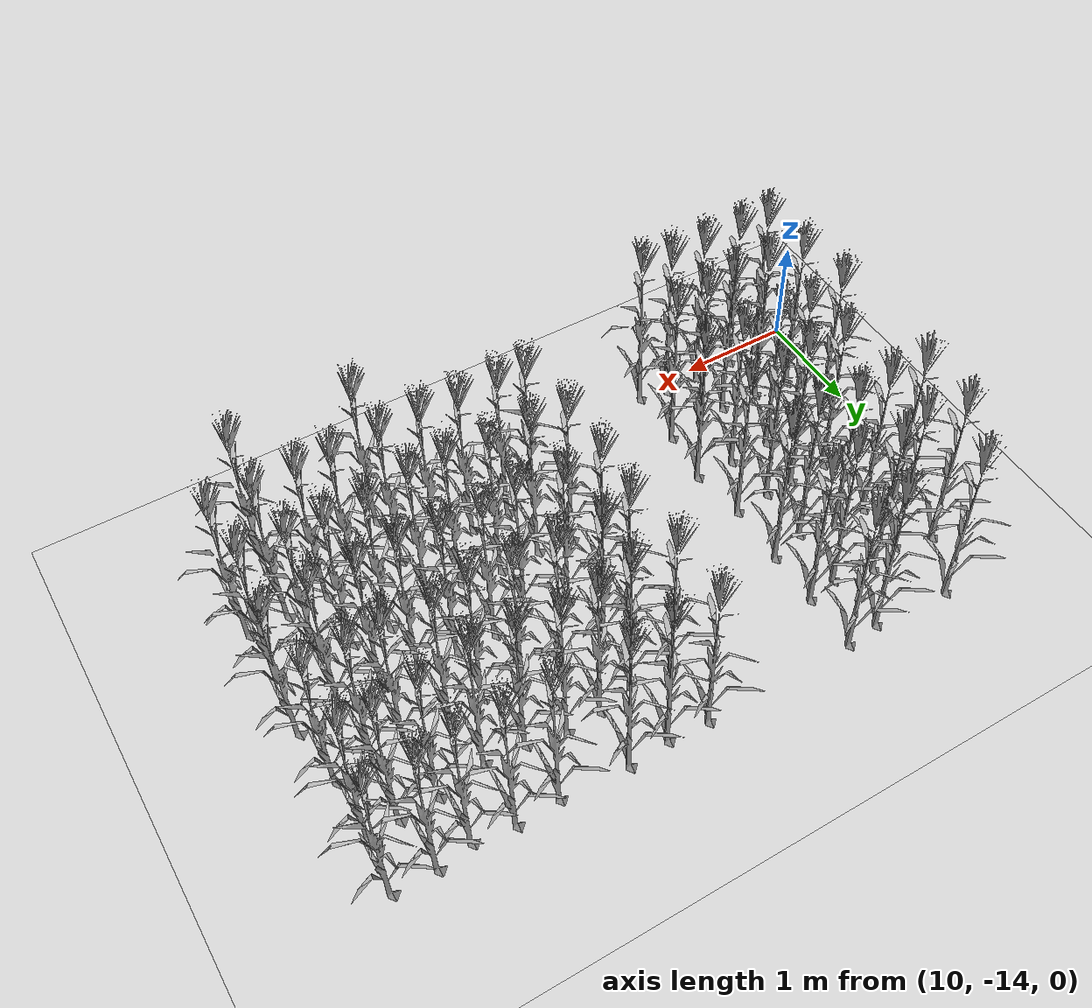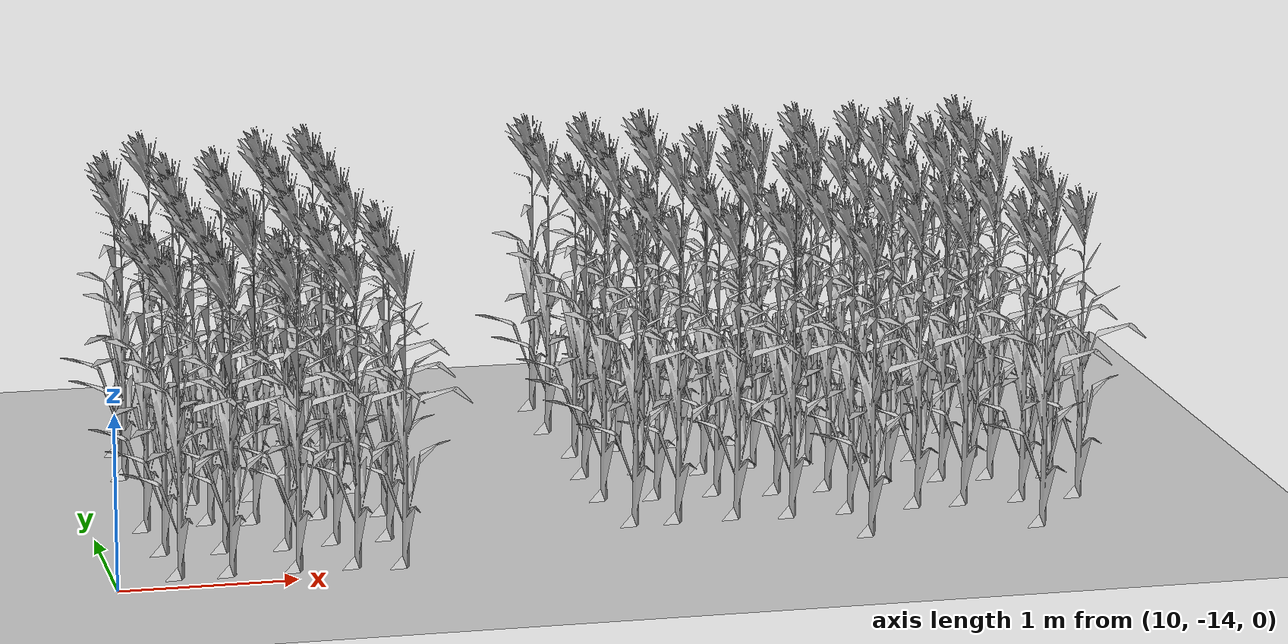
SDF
<sdf version="1.7">
 <world name="farmland_world">
  <model name="ground_plane">
   <static>1</static>
   <link name="link">
    <collision name="collision">
     <geometry><plane><normal>0 0 1</normal><size>40.0 40.0</size></plane></geometry>
     <surface><friction><ode><mu>100</mu><mu2>50</mu2></ode></friction></surface>
    </collision>
    <visual name="visual">
     <cast_shadows>0</cast_shadows>
     <geometry><plane><normal>0 0 1</normal><size>40.0 40.0</size></plane></geometry>
     <material>
      <script><uri>file://media/materials/scripts/gazebo.material</uri><name>Gazebo/Grey</name></script>
     </material>
    </visual>
   </link>
  </model>
  <model name="tree_3_408">
   <static>1</static>
   <link name="link">
    <collision name="collision">
     <geometry><mesh><uri>model://Corn_low_poly/corn.obj</uri><scale>1 1 1</scale></mesh></geometry>
     <surface><friction><ode><mu>100</mu><mu2>50</mu2></ode></friction></surface>
    </collision>
    <visual name="visual">
     <geometry><mesh><uri>model://Corn_low_poly/corn.obj</uri><scale>1 1 1</scale></mesh></geometry>
    </visual>
   </link>
   <pose>10.378177169690694 -11.273850662119786 0 0 0 0</pose>
  </model>
  <model name="tree_3_409">
   <static>1</static>
   <link name="link">
    <collision name="collision">
     <geometry><mesh><uri>model://Corn_low_poly/corn.obj</uri><scale>1 1 1</scale></mesh></geometry>
     <surface><friction><ode><mu>100</mu><mu2>50</mu2></ode></friction></surface>
    </collision>
    <visual name="visual">
     <geometry><mesh><uri>model://Corn_low_poly/corn.obj</uri><scale>1 1 1</scale></mesh></geometry>
    </visual>
   </link>
   <pose>10.347790786948346 -11.795807393422603 0 0 0 0</pose>
  </model>
  <model name="tree_3_411">
   <static>1</static>
   <link name="link">
    <collision name="collision">
     <geometry><mesh><uri>model://Corn_low_poly/corn.obj</uri><scale>1 1 1</scale></mesh></geometry>
     <surface><friction><ode><mu>100</mu><mu2>50</mu2></ode></friction></surface>
    </collision>
    <visual name="visual">
     <geometry><mesh><uri>model://Corn_low_poly/corn.obj</uri><scale>1 1 1</scale></mesh></geometry>
    </visual>
   </link>
   <pose>10.323994971421616 -12.887893453956563 0 0 0 0</pose>
  </model>
  <model name="tree_3_412">
   <static>1</static>
   <link name="link">
    <collision name="collision">
     <geometry><mesh><uri>model://Corn_low_poly/corn.obj</uri><scale>1 1 1</scale></mesh></geometry>
     <surface><friction><ode><mu>100</mu><mu2>50</mu2></ode></friction></surface>
    </collision>
    <visual name="visual">
     <geometry><mesh><uri>model://Corn_low_poly/corn.obj</uri><scale>1 1 1</scale></mesh></geometry>
    </visual>
   </link>
   <pose>10.359565088816868 -13.371506183479626 0 0 0 0</pose>
  </model>
  <model name="tree_3_413">
   <static>1</static>
   <link name="link">
    <collision name="collision">
     <geometry><mesh><uri>model://Corn_low_poly/corn.obj</uri><scale>1 1 1</scale></mesh></geometry>
     <surface><friction><ode><mu>100</mu><mu2>50</mu2></ode></friction></surface>
    </collision>
    <visual name="visual">
     <geometry><mesh><uri>model://Corn_low_poly/corn.obj</uri><scale>1 1 1</scale></mesh></geometry>
    </visual>
   </link>
   <pose>10.375353865705966 -13.854675953818488 0 0 0 0</pose>
  </model>
  <model name="tree_3_437">
   <static>1</static>
   <link name="link">
    <collision name="collision">
     <geometry><mesh><uri>model://Corn_low_poly/corn.obj</uri><scale>1 1 1</scale></mesh></geometry>
     <surface><friction><ode><mu>100</mu><mu2>50</mu2></ode></friction></surface>
    </collision>
    <visual name="visual">
     <geometry><mesh><uri>model://Corn_low_poly/corn.obj</uri><scale>1 1 1</scale></mesh></geometry>
    </visual>
   </link>
   <pose>10.653282648832125 -10.775167589396514 0 0 0 0</pose>
  </model>
  <model name="tree_3_438">
   <static>1</static>
   <link name="link">
    <collision name="collision">
     <geometry><mesh><uri>model://Corn_low_poly/corn.obj</uri><scale>1 1 1</scale></mesh></geometry>
     <surface><friction><ode><mu>100</mu><mu2>50</mu2></ode></friction></surface>
    </collision>
    <visual name="visual">
     <geometry><mesh><uri>model://Corn_low_poly/corn.obj</uri><scale>1 1 1</scale></mesh></geometry>
    </visual>
   </link>
   <pose>10.711728258271878 -11.357084645555314 0 0 0 0</pose>
  </model>
  <model name="tree_3_439">
   <static>1</static>
   <link name="link">
    <collision name="collision">
     <geometry><mesh><uri>model://Corn_low_poly/corn.obj</uri><scale>1 1 1</scale></mesh></geometry>
     <surface><friction><ode><mu>100</mu><mu2>50</mu2></ode></friction></surface>
    </collision>
    <visual name="visual">
     <geometry><mesh><uri>model://Corn_low_poly/corn.obj</uri><scale>1 1 1</scale></mesh></geometry>
    </visual>
   </link>
   <pose>10.685036562910984 -11.812894682988933 0 0 0 0</pose>
  </model>
  <model name="tree_3_440">
   <static>1</static>
   <link name="link">
    <collision name="collision">
     <geometry><mesh><uri>model://Corn_low_poly/corn.obj</uri><scale>1 1 1</scale></mesh></geometry>
     <surface><friction><ode><mu>100</mu><mu2>50</mu2></ode></friction></surface>
    </collision>
    <visual name="visual">
     <geometry><mesh><uri>model://Corn_low_poly/corn.obj</uri><scale>1 1 1</scale></mesh></geometry>
    </visual>
   </link>
   <pose>10.674864976824791 -12.394576507813946 0 0 0 0</pose>
  </model>
  <model name="tree_3_441">
   <static>1</static>
   <link name="link">
    <collision name="collision">
     <geometry><mesh><uri>model://Corn_low_poly/corn.obj</uri><scale>1 1 1</scale></mesh></geometry>
     <surface><friction><ode><mu>100</mu><mu2>50</mu2></ode></friction></surface>
    </collision>
    <visual name="visual">
     <geometry><mesh><uri>model://Corn_low_poly/corn.obj</uri><scale>1 1 1</scale></mesh></geometry>
    </visual>
   </link>
   <pose>10.699367530608168 -12.819968274076253 0 0 0 0</pose>
  </model>
  <model name="tree_3_442">
   <static>1</static>
   <link name="link">
    <collision name="collision">
     <geometry><mesh><uri>model://Corn_low_poly/corn.obj</uri><scale>1 1 1</scale></mesh></geometry>
     <surface><friction><ode><mu>100</mu><mu2>50</mu2></ode></friction></surface>
    </collision>
    <visual name="visual">
     <geometry><mesh><uri>model://Corn_low_poly/corn.obj</uri><scale>1 1 1</scale></mesh></geometry>
    </visual>
   </link>
   <pose>10.694600946095816 -13.395878823783436 0 0 0 0</pose>
  </model>
  <model name="tree_3_443">
   <static>1</static>
   <link name="link">
    <collision name="collision">
     <geometry><mesh><uri>model://Corn_low_poly/corn.obj</uri><scale>1 1 1</scale></mesh></geometry>
     <surface><friction><ode><mu>100</mu><mu2>50</mu2></ode></friction></surface>
    </collision>
    <visual name="visual">
     <geometry><mesh><uri>model://Corn_low_poly/corn.obj</uri><scale>1 1 1</scale></mesh></geometry>
    </visual>
   </link>
   <pose>10.663517884539603 -13.857888201504915 0 0 0 0</pose>
  </model>
  <model name="tree_3_468">
   <static>1</static>
   <link name="link">
    <collision name="collision">
     <geometry><mesh><uri>model://Corn_low_poly/corn.obj</uri><scale>1 1 1</scale></mesh></geometry>
     <surface><friction><ode><mu>100</mu><mu2>50</mu2></ode></friction></surface>
    </collision>
    <visual name="visual">
     <geometry><mesh><uri>model://Corn_low_poly/corn.obj</uri><scale>1 1 1</scale></mesh></geometry>
    </visual>
   </link>
   <pose>11.014290454668355 -11.26365876882611 0 0 0 0</pose>
  </model>
  <model name="tree_3_469">
   <static>1</static>
   <link name="link">
    <collision name="collision">
     <geometry><mesh><uri>model://Corn_low_poly/corn.obj</uri><scale>1 1 1</scale></mesh></geometry>
     <surface><friction><ode><mu>100</mu><mu2>50</mu2></ode></friction></surface>
    </collision>
    <visual name="visual">
     <geometry><mesh><uri>model://Corn_low_poly/corn.obj</uri><scale>1 1 1</scale></mesh></geometry>
    </visual>
   </link>
   <pose>11.000642005382334 -11.799407988899151 0 0 0 0</pose>
  </model>
  <model name="tree_3_470">
   <static>1</static>
   <link name="link">
    <collision name="collision">
     <geometry><mesh><uri>model://Corn_low_poly/corn.obj</uri><scale>1 1 1</scale></mesh></geometry>
     <surface><friction><ode><mu>100</mu><mu2>50</mu2></ode></friction></surface>
    </collision>
    <visual name="visual">
     <geometry><mesh><uri>model://Corn_low_poly/corn.obj</uri><scale>1 1 1</scale></mesh></geometry>
    </visual>
   </link>
   <pose>11.028461330285811 -12.38615394152807 0 0 0 0</pose>
  </model>
  <model name="tree_3_471">
   <static>1</static>
   <link name="link">
    <collision name="collision">
     <geometry><mesh><uri>model://Corn_low_poly/corn.obj</uri><scale>1 1 1</scale></mesh></geometry>
     <surface><friction><ode><mu>100</mu><mu2>50</mu2></ode></friction></surface>
    </collision>
    <visual name="visual">
     <geometry><mesh><uri>model://Corn_low_poly/corn.obj</uri><scale>1 1 1</scale></mesh></geometry>
    </visual>
   </link>
   <pose>10.950488729782585 -12.862584494579488 0 0 0 0</pose>
  </model>
  <model name="tree_3_472">
   <static>1</static>
   <link name="link">
    <collision name="collision">
     <geometry><mesh><uri>model://Corn_low_poly/corn.obj</uri><scale>1 1 1</scale></mesh></geometry>
     <surface><friction><ode><mu>100</mu><mu2>50</mu2></ode></friction></surface>
    </collision>
    <visual name="visual">
     <geometry><mesh><uri>model://Corn_low_poly/corn.obj</uri><scale>1 1 1</scale></mesh></geometry>
    </visual>
   </link>
   <pose>11.045874227209751 -13.409879493074248 0 0 0 0</pose>
  </model>
  <model name="tree_3_473">
   <static>1</static>
   <link name="link">
    <collision name="collision">
     <geometry><mesh><uri>model://Corn_low_poly/corn.obj</uri><scale>1 1 1</scale></mesh></geometry>
     <surface><friction><ode><mu>100</mu><mu2>50</mu2></ode></friction></surface>
    </collision>
    <visual name="visual">
     <geometry><mesh><uri>model://Corn_low_poly/corn.obj</uri><scale>1 1 1</scale></mesh></geometry>
    </visual>
   </link>
   <pose>11.034597566893511 -13.852874629542011 0 0 0 0</pose>
  </model>
  <model name="tree_3_497">
   <static>1</static>
   <link name="link">
    <collision name="collision">
     <geometry><mesh><uri>model://Corn_low_poly/corn.obj</uri><scale>1 1 1</scale></mesh></geometry>
     <surface><friction><ode><mu>100</mu><mu2>50</mu2></ode></friction></surface>
    </collision>
    <visual name="visual">
     <geometry><mesh><uri>model://Corn_low_poly/corn.obj</uri><scale>1 1 1</scale></mesh></geometry>
    </visual>
   </link>
   <pose>11.338777313071688 -10.818100840378857 0 0 0 0</pose>
  </model>
  <model name="tree_3_498">
   <static>1</static>
   <link name="link">
    <collision name="collision">
     <geometry><mesh><uri>model://Corn_low_poly/corn.obj</uri><scale>1 1 1</scale></mesh></geometry>
     <surface><friction><ode><mu>100</mu><mu2>50</mu2></ode></friction></surface>
    </collision>
    <visual name="visual">
     <geometry><mesh><uri>model://Corn_low_poly/corn.obj</uri><scale>1 1 1</scale></mesh></geometry>
    </visual>
   </link>
   <pose>11.363573362736169 -11.348054740106246 0 0 0 0</pose>
  </model>
  <model name="tree_3_499">
   <static>1</static>
   <link name="link">
    <collision name="collision">
     <geometry><mesh><uri>model://Corn_low_poly/corn.obj</uri><scale>1 1 1</scale></mesh></geometry>
     <surface><friction><ode><mu>100</mu><mu2>50</mu2></ode></friction></surface>
    </collision>
    <visual name="visual">
     <geometry><mesh><uri>model://Corn_low_poly/corn.obj</uri><scale>1 1 1</scale></mesh></geometry>
    </visual>
   </link>
   <pose>11.3143047172839 -11.875512262066307 0 0 0 0</pose>
  </model>
  <model name="tree_3_500">
   <static>1</static>
   <link name="link">
    <collision name="collision">
     <geometry><mesh><uri>model://Corn_low_poly/corn.obj</uri><scale>1 1 1</scale></mesh></geometry>
     <surface><friction><ode><mu>100</mu><mu2>50</mu2></ode></friction></surface>
    </collision>
    <visual name="visual">
     <geometry><mesh><uri>model://Corn_low_poly/corn.obj</uri><scale>1 1 1</scale></mesh></geometry>
    </visual>
   </link>
   <pose>11.292878373986259 -12.378265223253912 0 0 0 0</pose>
  </model>
  <model name="tree_3_501">
   <static>1</static>
   <link name="link">
    <collision name="collision">
     <geometry><mesh><uri>model://Corn_low_poly/corn.obj</uri><scale>1 1 1</scale></mesh></geometry>
     <surface><friction><ode><mu>100</mu><mu2>50</mu2></ode></friction></surface>
    </collision>
    <visual name="visual">
     <geometry><mesh><uri>model://Corn_low_poly/corn.obj</uri><scale>1 1 1</scale></mesh></geometry>
    </visual>
   </link>
   <pose>11.341419803534086 -12.838969273435927 0 0 0 0</pose>
  </model>
  <model name="tree_3_502">
   <static>1</static>
   <link name="link">
    <collision name="collision">
     <geometry><mesh><uri>model://Corn_low_poly/corn.obj</uri><scale>1 1 1</scale></mesh></geometry>
     <surface><friction><ode><mu>100</mu><mu2>50</mu2></ode></friction></surface>
    </collision>
    <visual name="visual">
     <geometry><mesh><uri>model://Corn_low_poly/corn.obj</uri><scale>1 1 1</scale></mesh></geometry>
    </visual>
   </link>
   <pose>11.328990123558773 -13.362194836320823 0 0 0 0</pose>
  </model>
  <model name="tree_3_503">
   <static>1</static>
   <link name="link">
    <collision name="collision">
     <geometry><mesh><uri>model://Corn_low_poly/corn.obj</uri><scale>1 1 1</scale></mesh></geometry>
     <surface><friction><ode><mu>100</mu><mu2>50</mu2></ode></friction></surface>
    </collision>
    <visual name="visual">
     <geometry><mesh><uri>model://Corn_low_poly/corn.obj</uri><scale>1 1 1</scale></mesh></geometry>
    </visual>
   </link>
   <pose>11.36506835058263 -13.849051032313593 0 0 0 0</pose>
  </model>
  <model name="tree_3_527">
   <static>1</static>
   <link name="link">
    <collision name="collision">
     <geometry><mesh><uri>model://Corn_low_poly/corn.obj</uri><scale>1 1 1</scale></mesh></geometry>
     <surface><friction><ode><mu>100</mu><mu2>50</mu2></ode></friction></surface>
    </collision>
    <visual name="visual">
     <geometry><mesh><uri>model://Corn_low_poly/corn.obj</uri><scale>1 1 1</scale></mesh></geometry>
    </visual>
   </link>
   <pose>11.641282021196465 -10.778653688376014 0 0 0 0</pose>
  </model>
  <model name="tree_3_528">
   <static>1</static>
   <link name="link">
    <collision name="collision">
     <geometry><mesh><uri>model://Corn_low_poly/corn.obj</uri><scale>1 1 1</scale></mesh></geometry>
     <surface><friction><ode><mu>100</mu><mu2>50</mu2></ode></friction></surface>
    </collision>
    <visual name="visual">
     <geometry><mesh><uri>model://Corn_low_poly/corn.obj</uri><scale>1 1 1</scale></mesh></geometry>
    </visual>
   </link>
   <pose>11.640798478360143 -11.287014707932315 0 0 0 0</pose>
  </model>
  <model name="tree_3_529">
   <static>1</static>
   <link name="link">
    <collision name="collision">
     <geometry><mesh><uri>model://Corn_low_poly/corn.obj</uri><scale>1 1 1</scale></mesh></geometry>
     <surface><friction><ode><mu>100</mu><mu2>50</mu2></ode></friction></surface>
    </collision>
    <visual name="visual">
     <geometry><mesh><uri>model://Corn_low_poly/corn.obj</uri><scale>1 1 1</scale></mesh></geometry>
    </visual>
   </link>
   <pose>11.637558212617984 -11.779796159280378 0 0 0 0</pose>
  </model>
  <model name="tree_3_530">
   <static>1</static>
   <link name="link">
    <collision name="collision">
     <geometry><mesh><uri>model://Corn_low_poly/corn.obj</uri><scale>1 1 1</scale></mesh></geometry>
     <surface><friction><ode><mu>100</mu><mu2>50</mu2></ode></friction></surface>
    </collision>
    <visual name="visual">
     <geometry><mesh><uri>model://Corn_low_poly/corn.obj</uri><scale>1 1 1</scale></mesh></geometry>
    </visual>
   </link>
   <pose>11.621215807272481 -12.34639066558705 0 0 0 0</pose>
  </model>
  <model name="tree_3_531">
   <static>1</static>
   <link name="link">
    <collision name="collision">
     <geometry><mesh><uri>model://Corn_low_poly/corn.obj</uri><scale>1 1 1</scale></mesh></geometry>
     <surface><friction><ode><mu>100</mu><mu2>50</mu2></ode></friction></surface>
    </collision>
    <visual name="visual">
     <geometry><mesh><uri>model://Corn_low_poly/corn.obj</uri><scale>1 1 1</scale></mesh></geometry>
    </visual>
   </link>
   <pose>11.696000917124984 -12.847906597622334 0 0 0 0</pose>
  </model>
  <model name="tree_3_532">
   <static>1</static>
   <link name="link">
    <collision name="collision">
     <geometry><mesh><uri>model://Corn_low_poly/corn.obj</uri><scale>1 1 1</scale></mesh></geometry>
     <surface><friction><ode><mu>100</mu><mu2>50</mu2></ode></friction></surface>
    </collision>
    <visual name="visual">
     <geometry><mesh><uri>model://Corn_low_poly/corn.obj</uri><scale>1 1 1</scale></mesh></geometry>
    </visual>
   </link>
   <pose>11.637694981172297 -13.344417690520215 0 0 0 0</pose>
  </model>
  <model name="tree_3_533">
   <static>1</static>
   <link name="link">
    <collision name="collision">
     <geometry><mesh><uri>model://Corn_low_poly/corn.obj</uri><scale>1 1 1</scale></mesh></geometry>
     <surface><friction><ode><mu>100</mu><mu2>50</mu2></ode></friction></surface>
    </collision>
    <visual name="visual">
     <geometry><mesh><uri>model://Corn_low_poly/corn.obj</uri><scale>1 1 1</scale></mesh></geometry>
    </visual>
   </link>
   <pose>11.624693769320901 -13.896052886572678 0 0 0 0</pose>
  </model>
  <model name="tree_3_557">
   <static>1</static>
   <link name="link">
    <collision name="collision">
     <geometry><mesh><uri>model://Corn_low_poly/corn.obj</uri><scale>1 1 1</scale></mesh></geometry>
     <surface><friction><ode><mu>100</mu><mu2>50</mu2></ode></friction></surface>
    </collision>
    <visual name="visual">
     <geometry><mesh><uri>model://Corn_low_poly/corn.obj</uri><scale>1 1 1</scale></mesh></geometry>
    </visual>
   </link>
   <pose>12.987501665229365 -10.778331619214974 0 0 0 0</pose>
  </model>
  <model name="tree_3_558">
   <static>1</static>
   <link name="link">
    <collision name="collision">
     <geometry><mesh><uri>model://Corn_low_poly/corn.obj</uri><scale>1 1 1</scale></mesh></geometry>
     <surface><friction><ode><mu>100</mu><mu2>50</mu2></ode></friction></surface>
    </collision>
    <visual name="visual">
     <geometry><mesh><uri>model://Corn_low_poly/corn.obj</uri><scale>1 1 1</scale></mesh></geometry>
    </visual>
   </link>
   <pose>12.971330126423021 -11.324614453216382 0 0 0 0</pose>
  </model>
  <model name="tree_3_559">
   <static>1</static>
   <link name="link">
    <collision name="collision">
     <geometry><mesh><uri>model://Corn_low_poly/corn.obj</uri><scale>1 1 1</scale></mesh></geometry>
     <surface><friction><ode><mu>100</mu><mu2>50</mu2></ode></friction></surface>
    </collision>
    <visual name="visual">
     <geometry><mesh><uri>model://Corn_low_poly/corn.obj</uri><scale>1 1 1</scale></mesh></geometry>
    </visual>
   </link>
   <pose>13.017975864464338 -11.873224857856748 0 0 0 0</pose>
  </model>
  <model name="tree_3_560">
   <static>1</static>
   <link name="link">
    <collision name="collision">
     <geometry><mesh><uri>model://Corn_low_poly/corn.obj</uri><scale>1 1 1</scale></mesh></geometry>
     <surface><friction><ode><mu>100</mu><mu2>50</mu2></ode></friction></surface>
    </collision>
    <visual name="visual">
     <geometry><mesh><uri>model://Corn_low_poly/corn.obj</uri><scale>1 1 1</scale></mesh></geometry>
    </visual>
   </link>
   <pose>12.979609626944194 -12.336351632381042 0 0 0 0</pose>
  </model>
  <model name="tree_3_561">
   <static>1</static>
   <link name="link">
    <collision name="collision">
     <geometry><mesh><uri>model://Corn_low_poly/corn.obj</uri><scale>1 1 1</scale></mesh></geometry>
     <surface><friction><ode><mu>100</mu><mu2>50</mu2></ode></friction></surface>
    </collision>
    <visual name="visual">
     <geometry><mesh><uri>model://Corn_low_poly/corn.obj</uri><scale>1 1 1</scale></mesh></geometry>
    </visual>
   </link>
   <pose>12.983091946074639 -12.828094608940667 0 0 0 0</pose>
  </model>
  <model name="tree_3_562">
   <static>1</static>
   <link name="link">
    <collision name="collision">
     <geometry><mesh><uri>model://Corn_low_poly/corn.obj</uri><scale>1 1 1</scale></mesh></geometry>
     <surface><friction><ode><mu>100</mu><mu2>50</mu2></ode></friction></surface>
    </collision>
    <visual name="visual">
     <geometry><mesh><uri>model://Corn_low_poly/corn.obj</uri><scale>1 1 1</scale></mesh></geometry>
    </visual>
   </link>
   <pose>13.046941437112721 -13.370046391320642 0 0 0 0</pose>
  </model>
  <model name="tree_3_587">
   <static>1</static>
   <link name="link">
    <collision name="collision">
     <geometry><mesh><uri>model://Corn_low_poly/corn.obj</uri><scale>1 1 1</scale></mesh></geometry>
     <surface><friction><ode><mu>100</mu><mu2>50</mu2></ode></friction></surface>
    </collision>
    <visual name="visual">
     <geometry><mesh><uri>model://Corn_low_poly/corn.obj</uri><scale>1 1 1</scale></mesh></geometry>
    </visual>
   </link>
   <pose>13.344038084141435 -10.800451643860761 0 0 0 0</pose>
  </model>
  <model name="tree_3_588">
   <static>1</static>
   <link name="link">
    <collision name="collision">
     <geometry><mesh><uri>model://Corn_low_poly/corn.obj</uri><scale>1 1 1</scale></mesh></geometry>
     <surface><friction><ode><mu>100</mu><mu2>50</mu2></ode></friction></surface>
    </collision>
    <visual name="visual">
     <geometry><mesh><uri>model://Corn_low_poly/corn.obj</uri><scale>1 1 1</scale></mesh></geometry>
    </visual>
   </link>
   <pose>13.332644916426647 -11.354306336897404 0 0 0 0</pose>
  </model>
  <model name="tree_3_589">
   <static>1</static>
   <link name="link">
    <collision name="collision">
     <geometry><mesh><uri>model://Corn_low_poly/corn.obj</uri><scale>1 1 1</scale></mesh></geometry>
     <surface><friction><ode><mu>100</mu><mu2>50</mu2></ode></friction></surface>
    </collision>
    <visual name="visual">
     <geometry><mesh><uri>model://Corn_low_poly/corn.obj</uri><scale>1 1 1</scale></mesh></geometry>
    </visual>
   </link>
   <pose>13.298912031591646 -11.797865088442974 0 0 0 0</pose>
  </model>
  <model name="tree_3_590">
   <static>1</static>
   <link name="link">
    <collision name="collision">
     <geometry><mesh><uri>model://Corn_low_poly/corn.obj</uri><scale>1 1 1</scale></mesh></geometry>
     <surface><friction><ode><mu>100</mu><mu2>50</mu2></ode></friction></surface>
    </collision>
    <visual name="visual">
     <geometry><mesh><uri>model://Corn_low_poly/corn.obj</uri><scale>1 1 1</scale></mesh></geometry>
    </visual>
   </link>
   <pose>13.326217554307943 -12.30616508795732 0 0 0 0</pose>
  </model>
  <model name="tree_3_591">
   <static>1</static>
   <link name="link">
    <collision name="collision">
     <geometry><mesh><uri>model://Corn_low_poly/corn.obj</uri><scale>1 1 1</scale></mesh></geometry>
     <surface><friction><ode><mu>100</mu><mu2>50</mu2></ode></friction></surface>
    </collision>
    <visual name="visual">
     <geometry><mesh><uri>model://Corn_low_poly/corn.obj</uri><scale>1 1 1</scale></mesh></geometry>
    </visual>
   </link>
   <pose>13.291002861370368 -12.865580165851485 0 0 0 0</pose>
  </model>
  <model name="tree_3_592">
   <static>1</static>
   <link name="link">
    <collision name="collision">
     <geometry><mesh><uri>model://Corn_low_poly/corn.obj</uri><scale>1 1 1</scale></mesh></geometry>
     <surface><friction><ode><mu>100</mu><mu2>50</mu2></ode></friction></surface>
    </collision>
    <visual name="visual">
     <geometry><mesh><uri>model://Corn_low_poly/corn.obj</uri><scale>1 1 1</scale></mesh></geometry>
    </visual>
   </link>
   <pose>13.29834803346697 -13.367872706451621 0 0 0 0</pose>
  </model>
  <model name="tree_3_617">
   <static>1</static>
   <link name="link">
    <collision name="collision">
     <geometry><mesh><uri>model://Corn_low_poly/corn.obj</uri><scale>1 1 1</scale></mesh></geometry>
     <surface><friction><ode><mu>100</mu><mu2>50</mu2></ode></friction></surface>
    </collision>
    <visual name="visual">
     <geometry><mesh><uri>model://Corn_low_poly/corn.obj</uri><scale>1 1 1</scale></mesh></geometry>
    </visual>
   </link>
   <pose>13.708272898489987 -10.767272354716074 0 0 0 0</pose>
  </model>
  <model name="tree_3_618">
   <static>1</static>
   <link name="link">
    <collision name="collision">
     <geometry><mesh><uri>model://Corn_low_poly/corn.obj</uri><scale>1 1 1</scale></mesh></geometry>
     <surface><friction><ode><mu>100</mu><mu2>50</mu2></ode></friction></surface>
    </collision>
    <visual name="visual">
     <geometry><mesh><uri>model://Corn_low_poly/corn.obj</uri><scale>1 1 1</scale></mesh></geometry>
    </visual>
   </link>
   <pose>13.646959724080928 -11.284593380512892 0 0 0 0</pose>
  </model>
  <model name="tree_3_619">
   <static>1</static>
   <link name="link">
    <collision name="collision">
     <geometry><mesh><uri>model://Corn_low_poly/corn.obj</uri><scale>1 1 1</scale></mesh></geometry>
     <surface><friction><ode><mu>100</mu><mu2>50</mu2></ode></friction></surface>
    </collision>
    <visual name="visual">
     <geometry><mesh><uri>model://Corn_low_poly/corn.obj</uri><scale>1 1 1</scale></mesh></geometry>
    </visual>
   </link>
   <pose>13.688292179320236 -11.78449255237075 0 0 0 0</pose>
  </model>
  <model name="tree_3_620">
   <static>1</static>
   <link name="link">
    <collision name="collision">
     <geometry><mesh><uri>model://Corn_low_poly/corn.obj</uri><scale>1 1 1</scale></mesh></geometry>
     <surface><friction><ode><mu>100</mu><mu2>50</mu2></ode></friction></surface>
    </collision>
    <visual name="visual">
     <geometry><mesh><uri>model://Corn_low_poly/corn.obj</uri><scale>1 1 1</scale></mesh></geometry>
    </visual>
   </link>
   <pose>13.678395886896196 -12.393656999110124 0 0 0 0</pose>
  </model>
  <model name="tree_3_621">
   <static>1</static>
   <link name="link">
    <collision name="collision">
     <geometry><mesh><uri>model://Corn_low_poly/corn.obj</uri><scale>1 1 1</scale></mesh></geometry>
     <surface><friction><ode><mu>100</mu><mu2>50</mu2></ode></friction></surface>
    </collision>
    <visual name="visual">
     <geometry><mesh><uri>model://Corn_low_poly/corn.obj</uri><scale>1 1 1</scale></mesh></geometry>
    </visual>
   </link>
   <pose>13.648493986152117 -12.853497395790132 0 0 0 0</pose>
  </model>
  <model name="tree_3_622">
   <static>1</static>
   <link name="link">
    <collision name="collision">
     <geometry><mesh><uri>model://Corn_low_poly/corn.obj</uri><scale>1 1 1</scale></mesh></geometry>
     <surface><friction><ode><mu>100</mu><mu2>50</mu2></ode></friction></surface>
    </collision>
    <visual name="visual">
     <geometry><mesh><uri>model://Corn_low_poly/corn.obj</uri><scale>1 1 1</scale></mesh></geometry>
    </visual>
   </link>
   <pose>13.644116780344701 -13.357789899885317 0 0 0 0</pose>
  </model>
  <model name="tree_3_648">
   <static>1</static>
   <link name="link">
    <collision name="collision">
     <geometry><mesh><uri>model://Corn_low_poly/corn.obj</uri><scale>1 1 1</scale></mesh></geometry>
     <surface><friction><ode><mu>100</mu><mu2>50</mu2></ode></friction></surface>
    </collision>
    <visual name="visual">
     <geometry><mesh><uri>model://Corn_low_poly/corn.obj</uri><scale>1 1 1</scale></mesh></geometry>
    </visual>
   </link>
   <pose>13.957031176810089 -11.262083849397106 0 0 0 0</pose>
  </model>
  <model name="tree_3_649">
   <static>1</static>
   <link name="link">
    <collision name="collision">
     <geometry><mesh><uri>model://Corn_low_poly/corn.obj</uri><scale>1 1 1</scale></mesh></geometry>
     <surface><friction><ode><mu>100</mu><mu2>50</mu2></ode></friction></surface>
    </collision>
    <visual name="visual">
     <geometry><mesh><uri>model://Corn_low_poly/corn.obj</uri><scale>1 1 1</scale></mesh></geometry>
    </visual>
   </link>
   <pose>14.032268231313136 -11.805555309725396 0 0 0 0</pose>
  </model>
  <model name="tree_3_650">
   <static>1</static>
   <link name="link">
    <collision name="collision">
     <geometry><mesh><uri>model://Corn_low_poly/corn.obj</uri><scale>1 1 1</scale></mesh></geometry>
     <surface><friction><ode><mu>100</mu><mu2>50</mu2></ode></friction></surface>
    </collision>
    <visual name="visual">
     <geometry><mesh><uri>model://Corn_low_poly/corn.obj</uri><scale>1 1 1</scale></mesh></geometry>
    </visual>
   </link>
   <pose>13.995757171104271 -12.323053109450544 0 0 0 0</pose>
  </model>
  <model name="tree_3_651">
   <static>1</static>
   <link name="link">
    <collision name="collision">
     <geometry><mesh><uri>model://Corn_low_poly/corn.obj</uri><scale>1 1 1</scale></mesh></geometry>
     <surface><friction><ode><mu>100</mu><mu2>50</mu2></ode></friction></surface>
    </collision>
    <visual name="visual">
     <geometry><mesh><uri>model://Corn_low_poly/corn.obj</uri><scale>1 1 1</scale></mesh></geometry>
    </visual>
   </link>
   <pose>13.992949029060794 -12.9048954108493 0 0 0 0</pose>
  </model>
  <model name="tree_3_652">
   <static>1</static>
   <link name="link">
    <collision name="collision">
     <geometry><mesh><uri>model://Corn_low_poly/corn.obj</uri><scale>1 1 1</scale></mesh></geometry>
     <surface><friction><ode><mu>100</mu><mu2>50</mu2></ode></friction></surface>
    </collision>
    <visual name="visual">
     <geometry><mesh><uri>model://Corn_low_poly/corn.obj</uri><scale>1 1 1</scale></mesh></geometry>
    </visual>
   </link>
   <pose>13.961019370237452 -13.389988340018418 0 0 0 0</pose>
  </model>
  <model name="tree_3_677">
   <static>1</static>
   <link name="link">
    <collision name="collision">
     <geometry><mesh><uri>model://Corn_low_poly/corn.obj</uri><scale>1 1 1</scale></mesh></geometry>
     <surface><friction><ode><mu>100</mu><mu2>50</mu2></ode></friction></surface>
    </collision>
    <visual name="visual">
     <geometry><mesh><uri>model://Corn_low_poly/corn.obj</uri><scale>1 1 1</scale></mesh></geometry>
    </visual>
   </link>
   <pose>14.290150162979232 -10.80556305464592 0 0 0 0</pose>
  </model>
  <model name="tree_3_678">
   <static>1</static>
   <link name="link">
    <collision name="collision">
     <geometry><mesh><uri>model://Corn_low_poly/corn.obj</uri><scale>1 1 1</scale></mesh></geometry>
     <surface><friction><ode><mu>100</mu><mu2>50</mu2></ode></friction></surface>
    </collision>
    <visual name="visual">
     <geometry><mesh><uri>model://Corn_low_poly/corn.obj</uri><scale>1 1 1</scale></mesh></geometry>
    </visual>
   </link>
   <pose>14.282300827903269 -11.329836416271876 0 0 0 0</pose>
  </model>
  <model name="tree_3_679">
   <static>1</static>
   <link name="link">
    <collision name="collision">
     <geometry><mesh><uri>model://Corn_low_poly/corn.obj</uri><scale>1 1 1</scale></mesh></geometry>
     <surface><friction><ode><mu>100</mu><mu2>50</mu2></ode></friction></surface>
    </collision>
    <visual name="visual">
     <geometry><mesh><uri>model://Corn_low_poly/corn.obj</uri><scale>1 1 1</scale></mesh></geometry>
    </visual>
   </link>
   <pose>14.359352407107025 -11.85493517780198 0 0 0 0</pose>
  </model>
  <model name="tree_3_680">
   <static>1</static>
   <link name="link">
    <collision name="collision">
     <geometry><mesh><uri>model://Corn_low_poly/corn.obj</uri><scale>1 1 1</scale></mesh></geometry>
     <surface><friction><ode><mu>100</mu><mu2>50</mu2></ode></friction></surface>
    </collision>
    <visual name="visual">
     <geometry><mesh><uri>model://Corn_low_poly/corn.obj</uri><scale>1 1 1</scale></mesh></geometry>
    </visual>
   </link>
   <pose>14.325163696155359 -12.341715068412311 0 0 0 0</pose>
  </model>
  <model name="tree_3_681">
   <static>1</static>
   <link name="link">
    <collision name="collision">
     <geometry><mesh><uri>model://Corn_low_poly/corn.obj</uri><scale>1 1 1</scale></mesh></geometry>
     <surface><friction><ode><mu>100</mu><mu2>50</mu2></ode></friction></surface>
    </collision>
    <visual name="visual">
     <geometry><mesh><uri>model://Corn_low_poly/corn.obj</uri><scale>1 1 1</scale></mesh></geometry>
    </visual>
   </link>
   <pose>14.29947814489635 -12.894956738511453 0 0 0 0</pose>
  </model>
  <model name="tree_3_682">
   <static>1</static>
   <link name="link">
    <collision name="collision">
     <geometry><mesh><uri>model://Corn_low_poly/corn.obj</uri><scale>1 1 1</scale></mesh></geometry>
     <surface><friction><ode><mu>100</mu><mu2>50</mu2></ode></friction></surface>
    </collision>
    <visual name="visual">
     <geometry><mesh><uri>model://Corn_low_poly/corn.obj</uri><scale>1 1 1</scale></mesh></geometry>
    </visual>
   </link>
   <pose>14.307597726686858 -13.37251855369252 0 0 0 0</pose>
  </model>
  <model name="tree_3_683">
   <static>1</static>
   <link name="link">
    <collision name="collision">
     <geometry><mesh><uri>model://Corn_low_poly/corn.obj</uri><scale>1 1 1</scale></mesh></geometry>
     <surface><friction><ode><mu>100</mu><mu2>50</mu2></ode></friction></surface>
    </collision>
    <visual name="visual">
     <geometry><mesh><uri>model://Corn_low_poly/corn.obj</uri><scale>1 1 1</scale></mesh></geometry>
    </visual>
   </link>
   <pose>14.304189725724726 -13.855183313496164 0 0 0 0</pose>
  </model>
  <model name="tree_3_707">
   <static>1</static>
   <link name="link">
    <collision name="collision">
     <geometry><mesh><uri>model://Corn_low_poly/corn.obj</uri><scale>1 1 1</scale></mesh></geometry>
     <surface><friction><ode><mu>100</mu><mu2>50</mu2></ode></friction></surface>
    </collision>
    <visual name="visual">
     <geometry><mesh><uri>model://Corn_low_poly/corn.obj</uri><scale>1 1 1</scale></mesh></geometry>
    </visual>
   </link>
   <pose>14.66426366327489 -10.787913048351747 0 0 0 0</pose>
  </model>
  <model name="tree_3_708">
   <static>1</static>
   <link name="link">
    <collision name="collision">
     <geometry><mesh><uri>model://Corn_low_poly/corn.obj</uri><scale>1 1 1</scale></mesh></geometry>
     <surface><friction><ode><mu>100</mu><mu2>50</mu2></ode></friction></surface>
    </collision>
    <visual name="visual">
     <geometry><mesh><uri>model://Corn_low_poly/corn.obj</uri><scale>1 1 1</scale></mesh></geometry>
    </visual>
   </link>
   <pose>14.621051315335693 -11.356202372349907 0 0 0 0</pose>
  </model>
  <model name="tree_3_709">
   <static>1</static>
   <link name="link">
    <collision name="collision">
     <geometry><mesh><uri>model://Corn_low_poly/corn.obj</uri><scale>1 1 1</scale></mesh></geometry>
     <surface><friction><ode><mu>100</mu><mu2>50</mu2></ode></friction></surface>
    </collision>
    <visual name="visual">
     <geometry><mesh><uri>model://Corn_low_poly/corn.obj</uri><scale>1 1 1</scale></mesh></geometry>
    </visual>
   </link>
   <pose>14.67411041527313 -11.783207905116718 0 0 0 0</pose>
  </model>
  <model name="tree_3_710">
   <static>1</static>
   <link name="link">
    <collision name="collision">
     <geometry><mesh><uri>model://Corn_low_poly/corn.obj</uri><scale>1 1 1</scale></mesh></geometry>
     <surface><friction><ode><mu>100</mu><mu2>50</mu2></ode></friction></surface>
    </collision>
    <visual name="visual">
     <geometry><mesh><uri>model://Corn_low_poly/corn.obj</uri><scale>1 1 1</scale></mesh></geometry>
    </visual>
   </link>
   <pose>14.653314988487447 -12.377410516869993 0 0 0 0</pose>
  </model>
  <model name="tree_3_711">
   <static>1</static>
   <link name="link">
    <collision name="collision">
     <geometry><mesh><uri>model://Corn_low_poly/corn.obj</uri><scale>1 1 1</scale></mesh></geometry>
     <surface><friction><ode><mu>100</mu><mu2>50</mu2></ode></friction></surface>
    </collision>
    <visual name="visual">
     <geometry><mesh><uri>model://Corn_low_poly/corn.obj</uri><scale>1 1 1</scale></mesh></geometry>
    </visual>
   </link>
   <pose>14.682201979771738 -12.815736437697051 0 0 0 0</pose>
  </model>
  <model name="tree_3_712">
   <static>1</static>
   <link name="link">
    <collision name="collision">
     <geometry><mesh><uri>model://Corn_low_poly/corn.obj</uri><scale>1 1 1</scale></mesh></geometry>
     <surface><friction><ode><mu>100</mu><mu2>50</mu2></ode></friction></surface>
    </collision>
    <visual name="visual">
     <geometry><mesh><uri>model://Corn_low_poly/corn.obj</uri><scale>1 1 1</scale></mesh></geometry>
    </visual>
   </link>
   <pose>14.71423297043996 -13.349201698584586 0 0 0 0</pose>
  </model>
  <model name="tree_3_737">
   <static>1</static>
   <link name="link">
    <collision name="collision">
     <geometry><mesh><uri>model://Corn_low_poly/corn.obj</uri><scale>1 1 1</scale></mesh></geometry>
     <surface><friction><ode><mu>100</mu><mu2>50</mu2></ode></friction></surface>
    </collision>
    <visual name="visual">
     <geometry><mesh><uri>model://Corn_low_poly/corn.obj</uri><scale>1 1 1</scale></mesh></geometry>
    </visual>
   </link>
   <pose>15.006711460032156 -10.837670940536025 0 0 0 0</pose>
  </model>
  <model name="tree_3_738">
   <static>1</static>
   <link name="link">
    <collision name="collision">
     <geometry><mesh><uri>model://Corn_low_poly/corn.obj</uri><scale>1 1 1</scale></mesh></geometry>
     <surface><friction><ode><mu>100</mu><mu2>50</mu2></ode></friction></surface>
    </collision>
    <visual name="visual">
     <geometry><mesh><uri>model://Corn_low_poly/corn.obj</uri><scale>1 1 1</scale></mesh></geometry>
    </visual>
   </link>
   <pose>15.038615784150098 -11.281776902129984 0 0 0 0</pose>
  </model>
  <model name="tree_3_739">
   <static>1</static>
   <link name="link">
    <collision name="collision">
     <geometry><mesh><uri>model://Corn_low_poly/corn.obj</uri><scale>1 1 1</scale></mesh></geometry>
     <surface><friction><ode><mu>100</mu><mu2>50</mu2></ode></friction></surface>
    </collision>
    <visual name="visual">
     <geometry><mesh><uri>model://Corn_low_poly/corn.obj</uri><scale>1 1 1</scale></mesh></geometry>
    </visual>
   </link>
   <pose>15.046854137858276 -11.822896878947388 0 0 0 0</pose>
  </model>
  <model name="tree_3_740">
   <static>1</static>
   <link name="link">
    <collision name="collision">
     <geometry><mesh><uri>model://Corn_low_poly/corn.obj</uri><scale>1 1 1</scale></mesh></geometry>
     <surface><friction><ode><mu>100</mu><mu2>50</mu2></ode></friction></surface>
    </collision>
    <visual name="visual">
     <geometry><mesh><uri>model://Corn_low_poly/corn.obj</uri><scale>1 1 1</scale></mesh></geometry>
    </visual>
   </link>
   <pose>14.973082425080646 -12.359350892748653 0 0 0 0</pose>
  </model>
  <model name="tree_3_741">
   <static>1</static>
   <link name="link">
    <collision name="collision">
     <geometry><mesh><uri>model://Corn_low_poly/corn.obj</uri><scale>1 1 1</scale></mesh></geometry>
     <surface><friction><ode><mu>100</mu><mu2>50</mu2></ode></friction></surface>
    </collision>
    <visual name="visual">
     <geometry><mesh><uri>model://Corn_low_poly/corn.obj</uri><scale>1 1 1</scale></mesh></geometry>
    </visual>
   </link>
   <pose>15.003217420534694 -12.832246137919654 0 0 0 0</pose>
  </model>
  <model name="tree_3_742">
   <static>1</static>
   <link name="link">
    <collision name="collision">
     <geometry><mesh><uri>model://Corn_low_poly/corn.obj</uri><scale>1 1 1</scale></mesh></geometry>
     <surface><friction><ode><mu>100</mu><mu2>50</mu2></ode></friction></surface>
    </collision>
    <visual name="visual">
     <geometry><mesh><uri>model://Corn_low_poly/corn.obj</uri><scale>1 1 1</scale></mesh></geometry>
    </visual>
   </link>
   <pose>14.989419150169981 -13.351956331257641 0 0 0 0</pose>
  </model>
  <model name="tree_3_767">
   <static>1</static>
   <link name="link">
    <collision name="collision">
     <geometry><mesh><uri>model://Corn_low_poly/corn.obj</uri><scale>1 1 1</scale></mesh></geometry>
     <surface><friction><ode><mu>100</mu><mu2>50</mu2></ode></friction></surface>
    </collision>
    <visual name="visual">
     <geometry><mesh><uri>model://Corn_low_poly/corn.obj</uri><scale>1 1 1</scale></mesh></geometry>
    </visual>
   </link>
   <pose>15.308391347816748 -10.779204350633117 0 0 0 0</pose>
  </model>
  <model name="tree_3_768">
   <static>1</static>
   <link name="link">
    <collision name="collision">
     <geometry><mesh><uri>model://Corn_low_poly/corn.obj</uri><scale>1 1 1</scale></mesh></geometry>
     <surface><friction><ode><mu>100</mu><mu2>50</mu2></ode></friction></surface>
    </collision>
    <visual name="visual">
     <geometry><mesh><uri>model://Corn_low_poly/corn.obj</uri><scale>1 1 1</scale></mesh></geometry>
    </visual>
   </link>
   <pose>15.371828360680619 -11.265473652802312 0 0 0 0</pose>
  </model>
  <model name="tree_3_769">
   <static>1</static>
   <link name="link">
    <collision name="collision">
     <geometry><mesh><uri>model://Corn_low_poly/corn.obj</uri><scale>1 1 1</scale></mesh></geometry>
     <surface><friction><ode><mu>100</mu><mu2>50</mu2></ode></friction></surface>
    </collision>
    <visual name="visual">
     <geometry><mesh><uri>model://Corn_low_poly/corn.obj</uri><scale>1 1 1</scale></mesh></geometry>
    </visual>
   </link>
   <pose>15.318117829927097 -11.797387009551153 0 0 0 0</pose>
  </model>
  <model name="tree_3_770">
   <static>1</static>
   <link name="link">
    <collision name="collision">
     <geometry><mesh><uri>model://Corn_low_poly/corn.obj</uri><scale>1 1 1</scale></mesh></geometry>
     <surface><friction><ode><mu>100</mu><mu2>50</mu2></ode></friction></surface>
    </collision>
    <visual name="visual">
     <geometry><mesh><uri>model://Corn_low_poly/corn.obj</uri><scale>1 1 1</scale></mesh></geometry>
    </visual>
   </link>
   <pose>15.329572144044802 -12.379292561192866 0 0 0 0</pose>
  </model>
  <model name="tree_3_771">
   <static>1</static>
   <link name="link">
    <collision name="collision">
     <geometry><mesh><uri>model://Corn_low_poly/corn.obj</uri><scale>1 1 1</scale></mesh></geometry>
     <surface><friction><ode><mu>100</mu><mu2>50</mu2></ode></friction></surface>
    </collision>
    <visual name="visual">
     <geometry><mesh><uri>model://Corn_low_poly/corn.obj</uri><scale>1 1 1</scale></mesh></geometry>
    </visual>
   </link>
   <pose>15.288852094292531 -12.85569532839914 0 0 0 0</pose>
  </model>
  <model name="tree_3_772">
   <static>1</static>
   <link name="link">
    <collision name="collision">
     <geometry><mesh><uri>model://Corn_low_poly/corn.obj</uri><scale>1 1 1</scale></mesh></geometry>
     <surface><friction><ode><mu>100</mu><mu2>50</mu2></ode></friction></surface>
    </collision>
    <visual name="visual">
     <geometry><mesh><uri>model://Corn_low_poly/corn.obj</uri><scale>1 1 1</scale></mesh></geometry>
    </visual>
   </link>
   <pose>15.337696351870449 -13.345040694260888 0 0 0 0</pose>
  </model>
  <model name="tree_3_773">
   <static>1</static>
   <link name="link">
    <collision name="collision">
     <geometry><mesh><uri>model://Corn_low_poly/corn.obj</uri><scale>1 1 1</scale></mesh></geometry>
     <surface><friction><ode><mu>100</mu><mu2>50</mu2></ode></friction></surface>
    </collision>
    <visual name="visual">
     <geometry><mesh><uri>model://Corn_low_poly/corn.obj</uri><scale>1 1 1</scale></mesh></geometry>
    </visual>
   </link>
   <pose>15.304951220704412 -13.866271414124029 0 0 0 0</pose>
  </model>
  <model name="tree_3_797">
   <static>1</static>
   <link name="link">
    <collision name="collision">
     <geometry><mesh><uri>model://Corn_low_poly/corn.obj</uri><scale>1 1 1</scale></mesh></geometry>
     <surface><friction><ode><mu>100</mu><mu2>50</mu2></ode></friction></surface>
    </collision>
    <visual name="visual">
     <geometry><mesh><uri>model://Corn_low_poly/corn.obj</uri><scale>1 1 1</scale></mesh></geometry>
    </visual>
   </link>
   <pose>15.672523865015588 -10.787320904304028 0 0 0 0</pose>
  </model>
  <model name="tree_3_798">
   <static>1</static>
   <link name="link">
    <collision name="collision">
     <geometry><mesh><uri>model://Corn_low_poly/corn.obj</uri><scale>1 1 1</scale></mesh></geometry>
     <surface><friction><ode><mu>100</mu><mu2>50</mu2></ode></friction></surface>
    </collision>
    <visual name="visual">
     <geometry><mesh><uri>model://Corn_low_poly/corn.obj</uri><scale>1 1 1</scale></mesh></geometry>
    </visual>
   </link>
   <pose>15.62438352757912 -11.263374299776336 0 0 0 0</pose>
  </model>
  <model name="tree_3_799">
   <static>1</static>
   <link name="link">
    <collision name="collision">
     <geometry><mesh><uri>model://Corn_low_poly/corn.obj</uri><scale>1 1 1</scale></mesh></geometry>
     <surface><friction><ode><mu>100</mu><mu2>50</mu2></ode></friction></surface>
    </collision>
    <visual name="visual">
     <geometry><mesh><uri>model://Corn_low_poly/corn.obj</uri><scale>1 1 1</scale></mesh></geometry>
    </visual>
   </link>
   <pose>15.635973302583466 -11.78779739033593 0 0 0 0</pose>
  </model>
  <model name="tree_3_800">
   <static>1</static>
   <link name="link">
    <collision name="collision">
     <geometry><mesh><uri>model://Corn_low_poly/corn.obj</uri><scale>1 1 1</scale></mesh></geometry>
     <surface><friction><ode><mu>100</mu><mu2>50</mu2></ode></friction></surface>
    </collision>
    <visual name="visual">
     <geometry><mesh><uri>model://Corn_low_poly/corn.obj</uri><scale>1 1 1</scale></mesh></geometry>
    </visual>
   </link>
   <pose>15.704191717124461 -12.309954503010593 0 0 0 0</pose>
  </model>
  <model name="tree_3_801">
   <static>1</static>
   <link name="link">
    <collision name="collision">
     <geometry><mesh><uri>model://Corn_low_poly/corn.obj</uri><scale>1 1 1</scale></mesh></geometry>
     <surface><friction><ode><mu>100</mu><mu2>50</mu2></ode></friction></surface>
    </collision>
    <visual name="visual">
     <geometry><mesh><uri>model://Corn_low_poly/corn.obj</uri><scale>1 1 1</scale></mesh></geometry>
    </visual>
   </link>
   <pose>15.645600591310584 -12.87875748691008 0 0 0 0</pose>
  </model>
  <model name="tree_3_802">
   <static>1</static>
   <link name="link">
    <collision name="collision">
     <geometry><mesh><uri>model://Corn_low_poly/corn.obj</uri><scale>1 1 1</scale></mesh></geometry>
     <surface><friction><ode><mu>100</mu><mu2>50</mu2></ode></friction></surface>
    </collision>
    <visual name="visual">
     <geometry><mesh><uri>model://Corn_low_poly/corn.obj</uri><scale>1 1 1</scale></mesh></geometry>
    </visual>
   </link>
   <pose>15.677935886504397 -13.336990842722525 0 0 0 0</pose>
  </model>
 </world>
</sdf>
